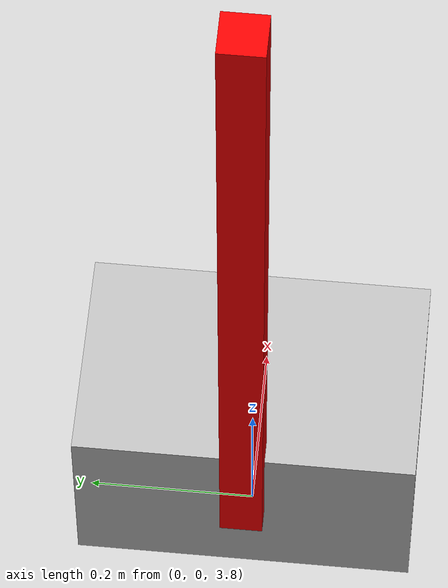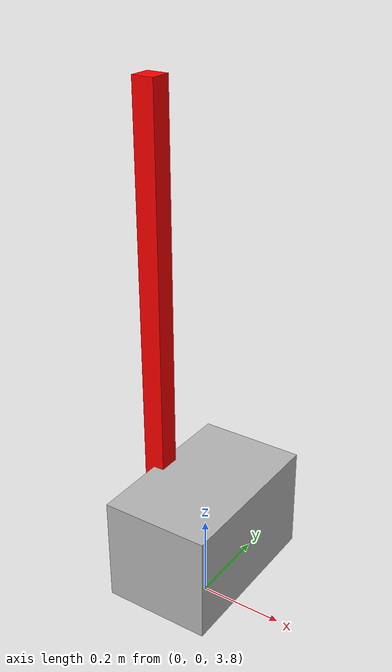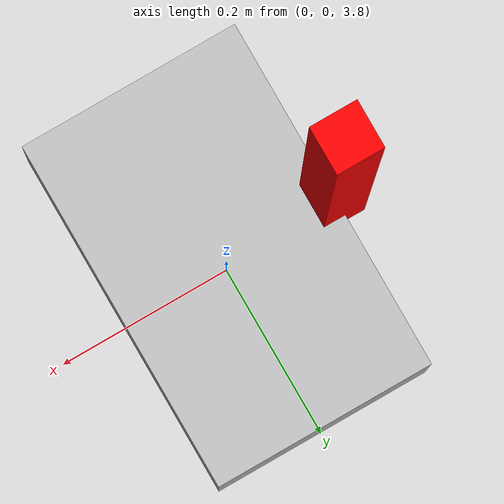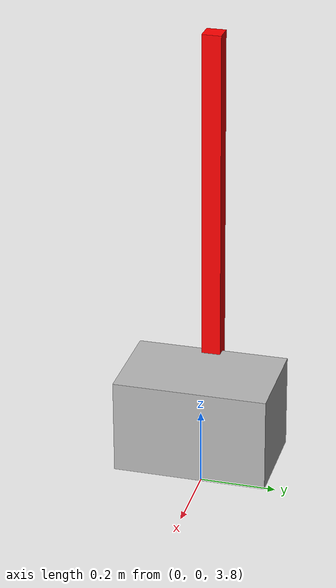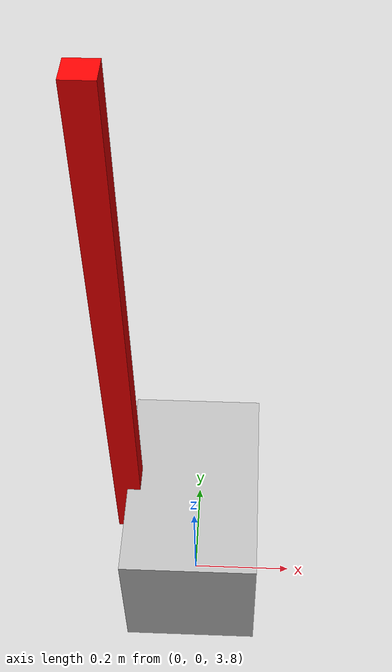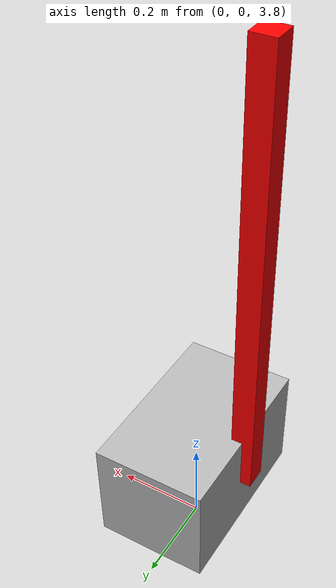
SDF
<?xml version="1.0" ?>
<sdf version="1.8">
    <world name="cart_pole_sim">

        <plugin filename="gz-sim-physics-system" name="gz::sim::systems::Physics" />
        <plugin filename="gz-sim-user-commands-system" name="gz::sim::systems::UserCommands" />
        <plugin filename="gz-sim-scene-broadcaster-system" name="gz::sim::systems::SceneBroadcaster" />

        <physics name="1ms" type="ode">
            <max_step_size>0.001</max_step_size>
            <real_time_factor>1.0</real_time_factor>
        </physics>

        <include>
            <uri>https://fuel.gazebosim.org/1.0/openrobotics/models/Sun</uri>
        </include>
        <include>
            <uri>https://fuel.gazebosim.org/1.0/openrobotics/models/Ground Plane</uri>
        </include>

        <model name="cart_pole">
            <plugin filename="libcontroller.so" name="controller"/>

            <pose>0 0 4 0 0 0</pose>
            <!-- CART LINK AND JOINT-->
            <link name="cart">
                <inertial>
                    <mass>2.0</mass>
                    <inertia>
                        <ixx>0.037</ixx><iyy>0.021</iyy><izz>0.037</izz>
                    </inertia>
                </inertial>
                <visual name="v1">
                    <geometry><box><size>0.25 0.4 0.25</size></box></geometry>
                </visual>
                <collision name="c1">
                    <geometry><box><size>0.25 0.4 0.25</size></box></geometry>
                </collision>
            </link>

            <joint name="cart_linear" type="prismatic">
                <parent>world</parent>
                <child>cart</child>
                <axis>
                    <xyz>0 1 0</xyz>
                    <limit>
                        <lower>-15.0</lower>
                        <upper>15.0</upper>
                    </limit>
                    <dynamics>
                        <damping>0.5</damping>
                        <friction>0.1</friction>
                    </dynamics>
                </axis>
            </joint>

            <!-- POLE LINK AND JOINT -->
            <link name="pole">
                <pose relative_to="cart">-0.125 0 0 0 0 0</pose>

                <inertial>
                    <pose>0 0 0.5 0 0 0</pose>
                    <mass>0.2</mass>
                    <inertia>
                        <ixx>0.0167</ixx>
                        <iyy>0.0167</iyy>
                        <izz>0.001</izz>
                    </inertia>
                </inertial>

                <visual name="v2">
                    <pose>0 0 0.5 0 0 0</pose>
                    <geometry>
                    <box>
                        <size>0.05 0.05 1.0</size>
                    </box>
                    </geometry>
                    <material>
                        <diffuse>1 0 0 1</diffuse>
                        <ambient>1 0 0 1</ambient>
                    </material>
                </visual>

                <collision name="c2">
                    <pose>0 0 0.5 0 0 0</pose>
                    <geometry>
                    <box>
                        <size>0.05 0.05 1.0</size>
                    </box>
                    </geometry>
                </collision>
            </link>

            <joint name="pole_revolute" type="revolute">
                <parent>cart</parent>
                <child>pole</child>
                <pose relative_to="cart">-0.125 0 0 0 0 0</pose>
                <axis>
                    <xyz>1 0 0</xyz>
                    <dynamics>
                        <damping>0.01</damping>
                    </dynamics>
                </axis>
            </joint>
        </model>
    </world>
</sdf>
